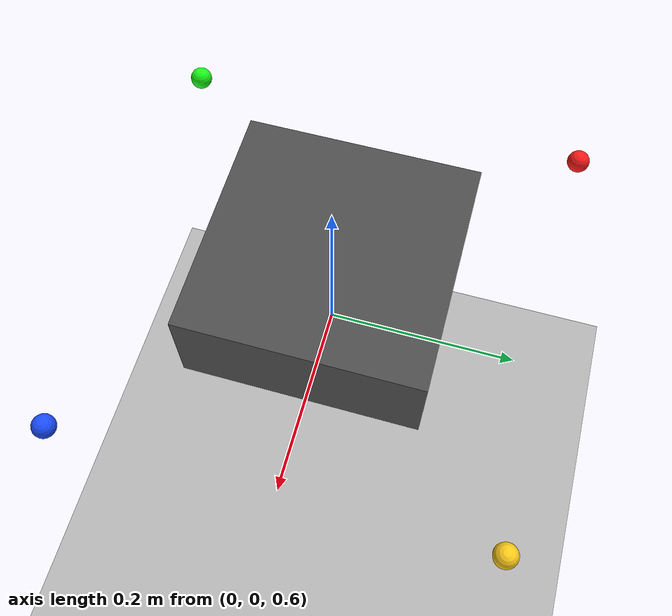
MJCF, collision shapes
<mujoco model="Mine UAV dynamics v2 estimated mass properties">
  <!-- Mass 7 kg; ESTIMATED_COM_V2 and ESTIMATED_INERTIA_V2 are engineering estimates, not measurements. -->
  <compiler meshdir="../assets" />
  <option timestep="0.002" gravity="0 0 -9.81" />
  <statistic center="0 0 0.7" extent="1.2" />
  <visual>
    <headlight diffuse="0.9 0.9 0.9" ambient="0.45 0.45 0.45" specular="0 0 0" />
    <global azimuth="135" elevation="-25" />
  </visual>
  <asset>
    <mesh name="body_visual" file="mine_uav_body_visual.stl" />
    <mesh name="lidar_visual" file="mine_uav_lidar_visual.obj" />
    <mesh name="camera_visual" file="mine_uav_camera_visual.stl" />
  </asset>
  <worldbody>
    <light pos="0 0 3" dir="0 0 -1" />
    <geom name="floor" type="plane" size="2 2 0.1" rgba="0.7 0.7 0.7 1" />
    <body name="mine_uav" pos="0 0 0.7">
      <freejoint />
      <!-- ESTIMATED_COM_V2 and ESTIMATED_INERTIA_V2 from 177 assembly STL files; not measured. -->
      <inertial pos="0.015134357576683754 8.1249678553997436e-05 0.03602788555838244" mass="7" fullinertia="0.16122999827099874 0.14404023676416694 0.25167988037855171 -0.00086785714362115369 -0.011904748523811112 2.6621858998969504e-05" />
      <geom name="body_visual" type="mesh" mesh="body_visual" rgba="0.22 0.27 0.32 1" contype="0" conaffinity="0" group="1" />
      <geom name="lidar_visual" type="mesh" mesh="lidar_visual" rgba="0.15 0.55 0.9 1" contype="0" conaffinity="0" group="1" />
      <geom name="camera_visual" type="mesh" mesh="camera_visual" rgba="0.95 0.45 0.12 1" contype="0" conaffinity="0" group="1" />
      <!-- TEMPORARY_PLACEHOLDER collision: coarse central box, not actual airframe collision. -->
      <geom name="coarse_collision" type="box" size="0.12 0.12 0.05" rgba="0.3 0.3 0.3 0.15" />
      <!-- Positions converted from the four U7 STL geometric centroids; not measured thrust centers. -->
      <site name="motor_1_site" pos="-0.218964 0.219884 -0.025425" size="0.012" rgba="1 0.1 0.1 1" />
      <site name="motor_2_site" pos="-0.218964 -0.219118 -0.025425" size="0.012" rgba="0.1 1 0.1 1" />
      <site name="motor_3_site" pos="0.220039 -0.219118 -0.025425" size="0.012" rgba="0.1 0.3 1 1" />
      <site name="motor_4_site" pos="0.220039 0.219884 -0.025425" size="0.012" rgba="1 0.8 0.1 1" />
    </body>
  </worldbody>
  <include file="rotor_actuators.xml" />
</mujoco>

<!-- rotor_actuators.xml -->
<mujoco>
  <!-- GENERATED by scripts/build_rotor_model.py from models/rotor_config.json. -->
  <!-- ctrl[i] = omega_i^2 in (rad/s)^2; site gear = [0,0,k_f,0,0,s_i*k_m]. -->
  <actuator>
    <motor name="motor_1_wrench" site="motor_1_site" gear="0 0 4.9977603696661616e-05 0 0 8.6000000000000002e-07"/>
    <motor name="motor_2_wrench" site="motor_2_site" gear="0 0 4.9977603696661616e-05 0 0 -8.6000000000000002e-07"/>
    <motor name="motor_3_wrench" site="motor_3_site" gear="0 0 4.9977603696661616e-05 0 0 8.6000000000000002e-07"/>
    <motor name="motor_4_wrench" site="motor_4_site" gear="0 0 4.9977603696661616e-05 0 0 -8.6000000000000002e-07"/>
  </actuator>
</mujoco>
